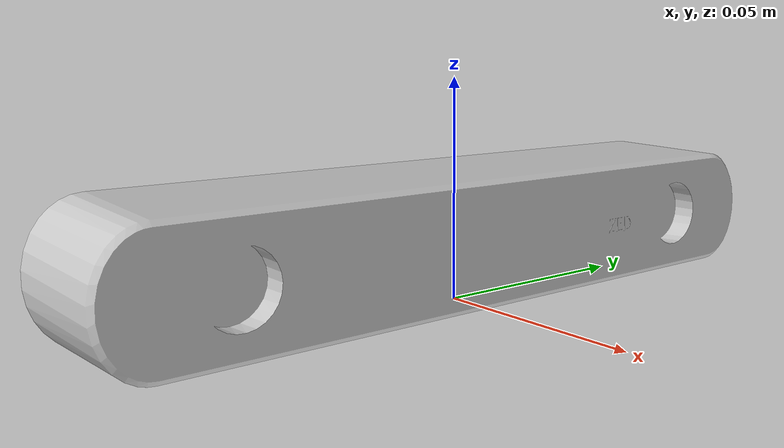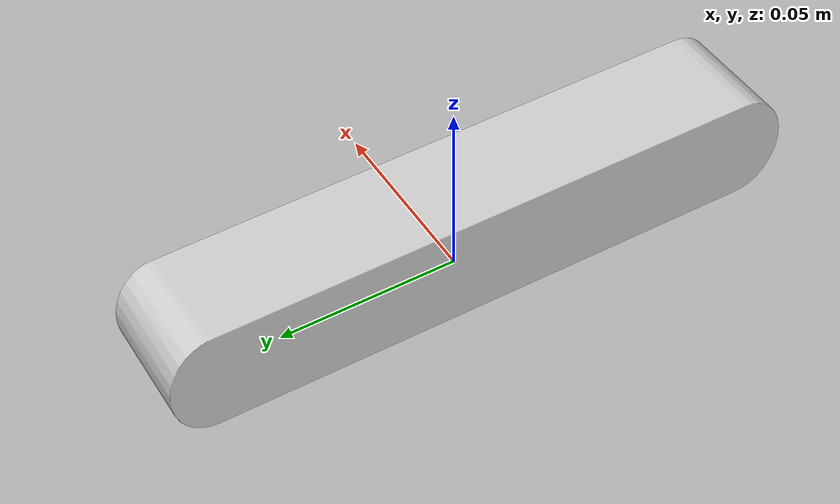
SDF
<?xml version="1.0" ?>
<sdf version="1.5">
	<model name="zed_sensor">
		<static>1</static>
		<pose>0 0 0.015 0 0 0</pose>
		<link name="link">
			<inertial>
				<mass>0.1</mass>
			</inertial>
			<collision name="collision">
				<pose>-0.0007 0 0 0 0 0</pose>
				<geometry>
					<box>
						<size>0.0318 0.1748 0.03</size>
					</box>
				</geometry>
			</collision>
			<visual name="visual">
				<transparency>0</transparency>
				<geometry>
					<mesh>
						<uri>model://zed_sensor/meshes/zed_sensor.stl</uri>
					</mesh>
				</geometry>
				<material>
					<script>
						<name>SensorPlacementOptimization/LightGray</name>
						<uri>file://materials/sensor_placement_optimization.material</uri>
					</script>
				</material>
			</visual>
			<sensor name="sensor" type="depth">
				<update_rate>15</update_rate>
				<camera>
					<horizontal_fov>1.91986</horizontal_fov>
					<image>
						<width>4416</width>
						<height>1242</height>
						<format>B8G8R8</format>
					</image>
					<clip>
						<near>0.7</near>
						<far>20.0</far>
					</clip>
				</camera>
			</sensor>
		</link>
	</model>
</sdf>
